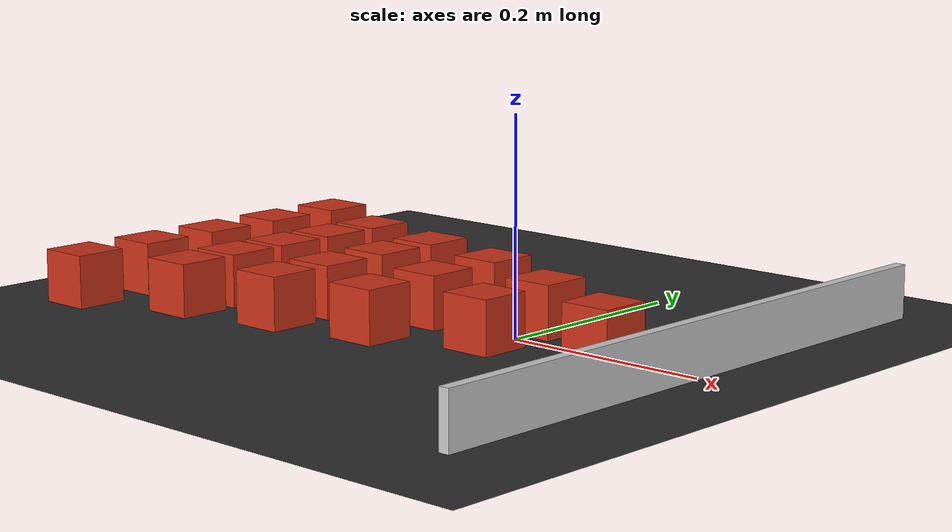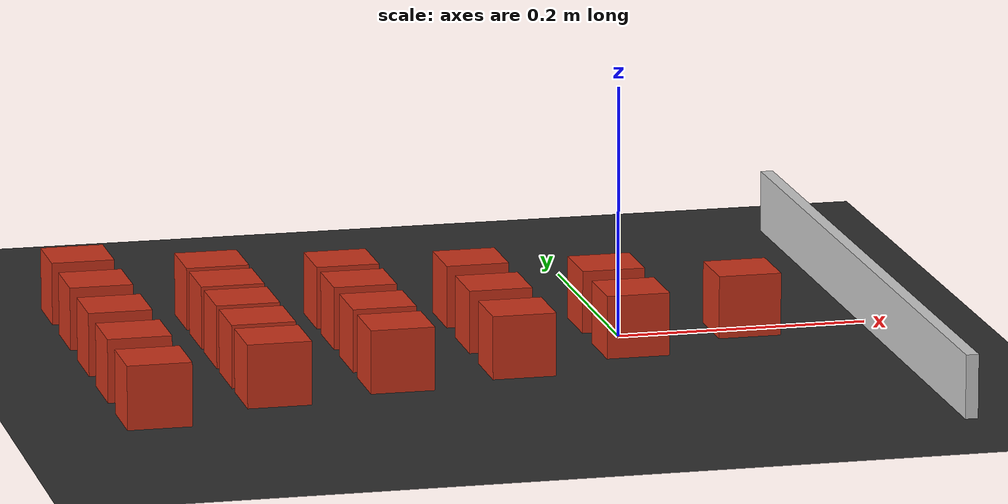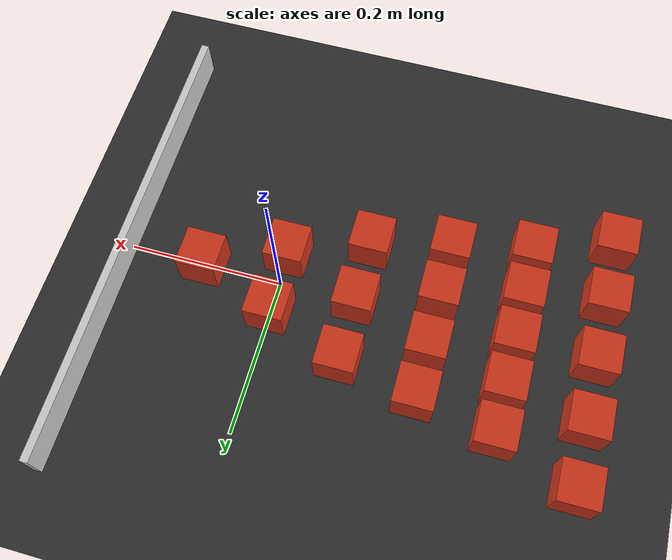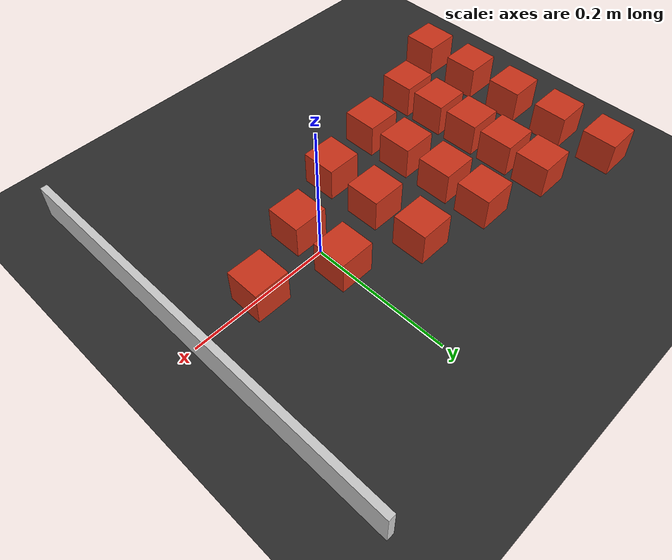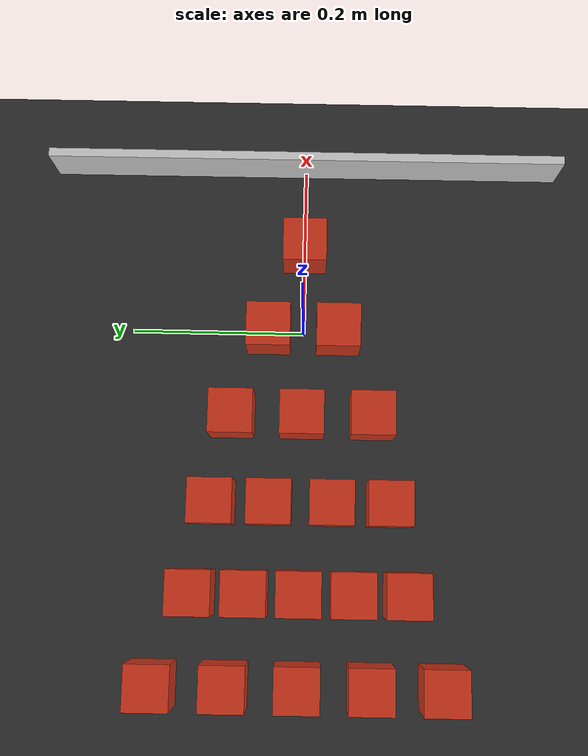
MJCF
<mujoco model="boxes_free">

    <option timestep=".02"/>
    <size memory="20M"/>

    <asset>
        <texture name='cube_surface' file="./iris_block.png" gridsize="3 4" gridlayout=".U..LFRB.D.."/>
        <material name="MatCube" texture="cube_surface" specular="5" shininess=".0"/>

        <texture name="texplane" type="2d" builtin="checker" rgb1=".2 .2 .2" rgb2=".15 0.15 0.15"
                 width="512" height="512" mark="cross" markrgb=".8 .8 .8"/>
        <material name="matplane" reflectance="0.3" texture="texplane" texrepeat="1 1" texuniform="true"/>
    </asset>

    <worldbody>

        <light directional="false" diffuse=".2 .2 .2" specular="0.01 0.01 0.01" pos="0 0 5.0" dir="0 0 -1"
               castshadow="false"/>
        <light directional="true" diffuse=".6 .6 .6" specular="0.0 0.0 0.0" pos="0 0 4" dir="0 0 -1"
               castshadow="false"/>

        <geom name="ground" type="plane" size="0 0 1" pos="0 0 0" quat="1 0 0 0"
              friction="0.5"
              material="matplane" condim="1"/>

        <body name="b1" pos="0.1 0 .025">
            <joint type="free"/>
            <geom name="b1" type="box" size=".025 .025 .025" rgba=".8 .2 .1 1"
                  mass="0.001"
                  friction="0.5" condim="3" material="MatCube"/>
        </body>

        <body name="b2" pos="0.0 0.04 .025">
            <joint type="free"/>
            <geom name="b2" type="box" size=".025 .025 .025" rgba=".8 .2 .1 1"
                  mass="0.001"
                  friction="0.5" condim="3" material="MatCube"/>
        </body>

        <body name="b3" pos="0.0 -0.04 .025">
            <joint type="free"/>
            <geom name="b3" type="box" size=".025 .025 .025" rgba=".8 .2 .1 1"
                  mass="0.001"
                  friction="0.5" condim="3" material="MatCube"/>
        </body>

        <body name="b4" pos="-0.1 0.08 .025">
            <joint type="free"/>
            <geom name="b4" type="box" size=".025 .025 .025" rgba=".8 .2 .1 1"
                  mass="0.001"
                  friction="0.5" condim="3" material="MatCube"/>
        </body>

        <body name="b5" pos="-0.1 0.00 .025">
            <joint type="free"/>
            <geom name="b5" type="box" size=".025 .025 .025" rgba=".8 .2 .1 1"
                  mass="0.001"
                  friction="0.5" condim="3" material="MatCube"/>
        </body>

        <body name="b6" pos="-0.1 -0.08 .025">
            <joint type="free"/>
            <geom name="b6" type="box" size=".025 .025 .025" rgba=".8 .2 .1 1"
                  mass="0.001"
                  friction="0.5" condim="3" material="MatCube"/>
        </body>

        <body name="b7" pos="-0.2 0.10 .025">
            <joint type="free"/>
            <geom name="b7" type="box" size=".025 .025 .025" rgba=".8 .2 .1 1"
                  mass="0.001"
                  friction="0.5" condim="3" material="MatCube"/>
        </body>

        <body name="b8" pos="-0.2 0.035 .025">
            <joint type="free"/>
            <geom name="b8" type="box" size=".025 .025 .025" rgba=".8 .2 .1 1"
                  mass="0.001"
                  friction="0.5" condim="3" material="MatCube"/>
        </body>

        <body name="b9" pos="-0.2 -0.035 .025">
            <joint type="free"/>
            <geom name="b9" type="box" size=".025 .025 .025" rgba=".8 .2 .1 1"
                  mass="0.001"
                  friction="0.5" condim="3" material="MatCube"/>
        </body>

        <body name="b10" pos="-0.2 -0.10 .025">
            <joint type="free"/>
            <geom name="b10" type="box" size=".025 .025 .025" rgba=".8 .2 .1 1"
                  mass="0.001"
                  friction="0.5" condim="3" material="MatCube"/>
        </body>

        <body name="b11" pos="-0.3 0.12 .025">
            <joint type="free"/>
            <geom name="b11" type="box" size=".025 .025 .025" rgba=".8 .2 .1 1"
                  mass="0.001"
                  friction="0.5" condim="3" material="MatCube"/>
        </body>

        <body name="b12" pos="-0.3 0.06 .025">
            <joint type="free"/>
            <geom name="b12" type="box" size=".025 .025 .025" rgba=".8 .2 .1 1"
                  mass="0.001"
                  friction="0.5" condim="3" material="MatCube"/>
        </body>

        <body name="b13" pos="-0.3 0.0 .025">
            <joint type="free"/>
            <geom name="b13" type="box" size=".025 .025 .025" rgba=".8 .2 .1 1"
                  mass="0.001"
                  friction="0.5" condim="3" material="MatCube"/>
        </body>

        <body name="b14" pos="-0.3 -0.06 .025">
            <joint type="free"/>
            <geom name="b14" type="box" size=".025 .025 .025" rgba=".8 .2 .1 1"
                  mass="0.001"
                  friction="0.5" condim="3" material="MatCube"/>
        </body>

        <body name="b15" pos="-0.3 -0.12 .025">
            <joint type="free"/>
            <geom name="b15" type="box" size=".025 .025 .025" rgba=".8 .2 .1 1"
                  mass="0.001"
                  friction="0.5" condim="3" material="MatCube"/>
        </body>

        <body name="b16" pos="-0.4 0.16 .025">
            <joint type="free"/>
            <geom name="b16" type="box" size=".025 .025 .025" rgba=".8 .2 .1 1"
                  mass="0.001"
                  friction="0.5" condim="3" material="MatCube"/>
        </body>

        <body name="b17" pos="-0.4 0.08 .025">
            <joint type="free"/>
            <geom name="b17" type="box" size=".025 .025 .025" rgba=".8 .2 .1 1"
                  mass="0.001"
                  friction="0.5" condim="3" material="MatCube"/>
        </body>

        <body name="b18" pos="-0.4 0.00 .025">
            <joint type="free"/>
            <geom name="b18" type="box" size=".025 .025 .025" rgba=".8 .2 .1 1"
                  mass="0.001"
                  friction="0.5" condim="3" material="MatCube"/>
        </body>

        <body name="b19" pos="-0.4 -0.08 .025">
            <joint type="free"/>
            <geom name="b19" type="box" size=".025 .025 .025" rgba=".8 .2 .1 1"
                  mass="0.001"
                  friction="0.5" condim="3" material="MatCube"/>
        </body>

        <body name="b20" pos="-0.4 -0.16 .025">
            <joint type="free"/>
            <geom name="b20" type="box" size=".025 .025 .025" rgba=".8 .2 .1 1"
                  mass="0.001"
                  friction="0.5" condim="3" material="MatCube"/>
        </body>

        <body name="actor" pos="0.2 0. 0.026">
            <joint name="actor" type="slide" axis="1 0 0"/>
            <geom name="actor" type="box" size=".005 0.3 .025" rgba=".8 .8 .8 1" friction="0.0" condim="3"/>
        </body>

    </worldbody>

    <actuator>
        <position name="actor" joint="actor" kp="100" kv="0"/>
    </actuator>

</mujoco>
